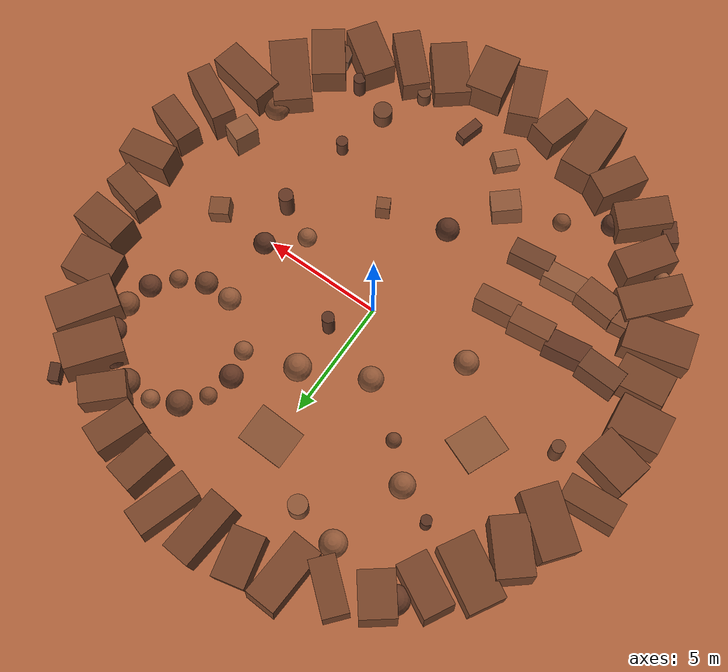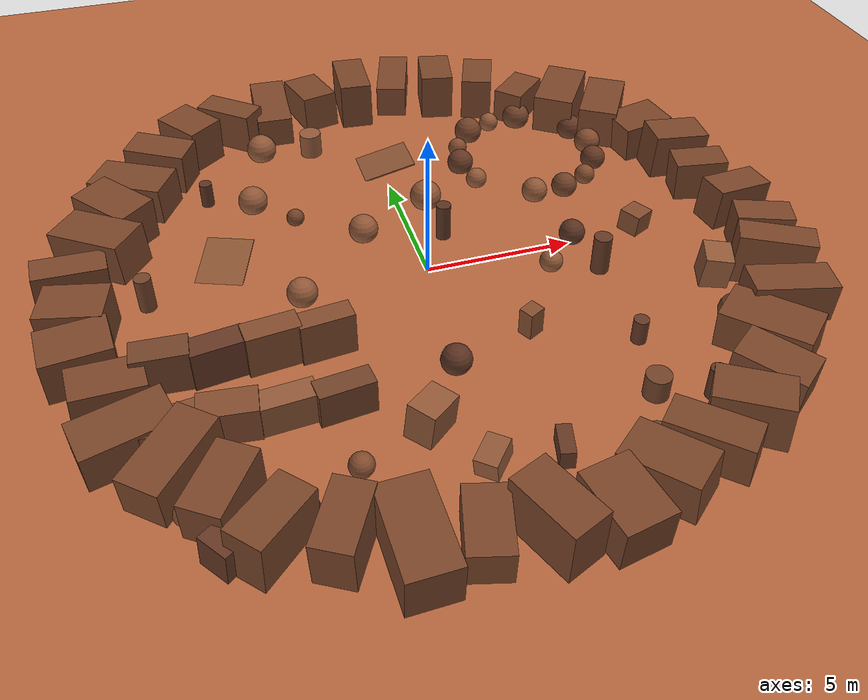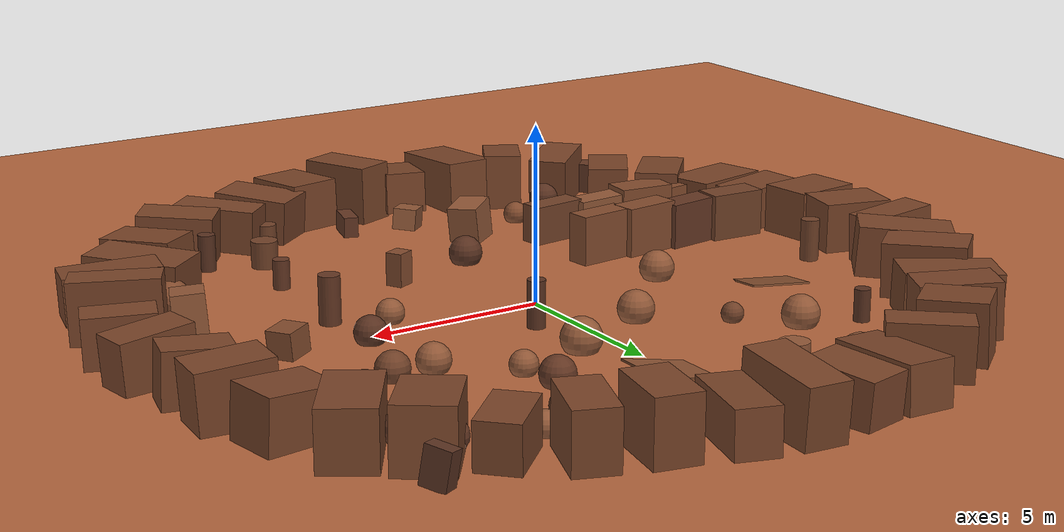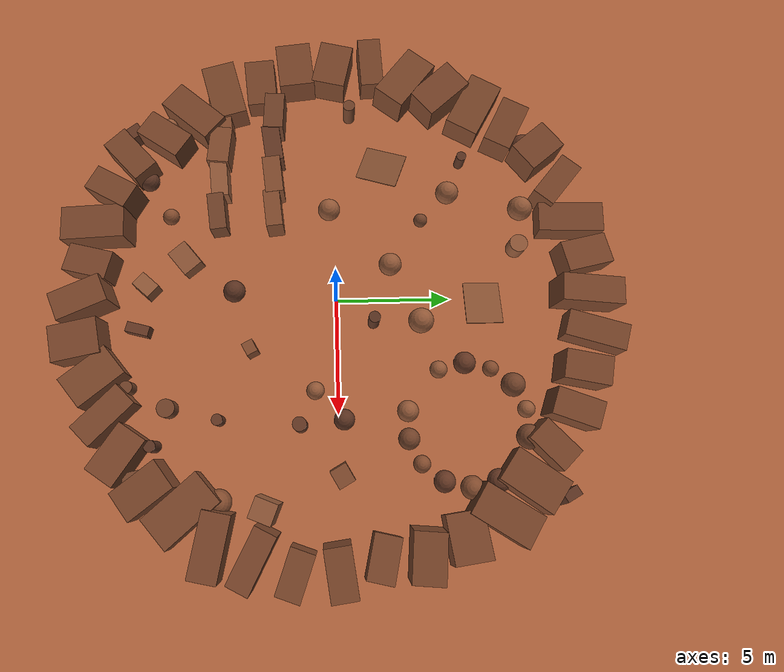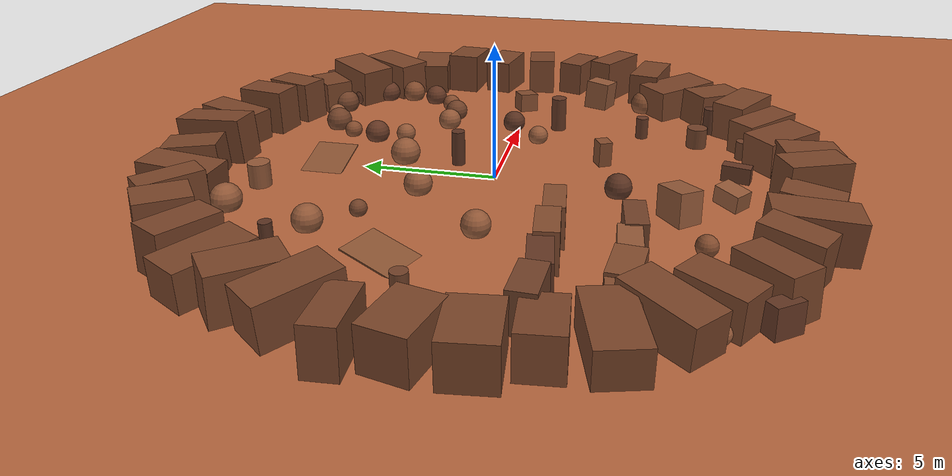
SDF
<?xml version="1.0"?>
<!-- Generated by gen_mars_world.py (seed 42) - edit the generator, not this file -->
<sdf version="1.8">
  <world name="rover_world">
    <physics name="1ms" type="ignored">
      <max_step_size>0.001</max_step_size>
      <real_time_factor>1.0</real_time_factor>
    </physics>
    <plugin filename="gz-sim-physics-system" name="gz::sim::systems::Physics"/>
    <plugin filename="gz-sim-user-commands-system" name="gz::sim::systems::UserCommands"/>
    <plugin filename="gz-sim-scene-broadcaster-system" name="gz::sim::systems::SceneBroadcaster"/>
    <plugin filename="gz-sim-sensors-system" name="gz::sim::systems::Sensors">
      <render_engine>ogre2</render_engine>
    </plugin>

    <scene>
      <ambient>0.5 0.38 0.3 1</ambient>
      <background>0.85 0.6 0.42 1</background>
    </scene>

    <light type="directional" name="sun">
      <cast_shadows>true</cast_shadows>
      <pose>0 0 10 0 0 0</pose>
      <diffuse>1.0 0.82 0.65 1</diffuse>
      <specular>0.3 0.25 0.2 1</specular>
      <direction>-0.4 0.2 -0.85</direction>
    </light>

    <model name="ground_plane">
      <static>true</static>
      <link name="link">
        <collision name="collision">
          <geometry><plane><normal>0 0 1</normal><size>60 60</size></plane></geometry>
        </collision>
        <visual name="visual">
          <geometry><plane><normal>0 0 1</normal><size>60 60</size></plane></geometry>
          <material><ambient>0.71 0.40 0.24 1</ambient><diffuse>0.71 0.40 0.24 1</diffuse></material>
        </visual>
      </link>
    </model>

    <model name="rim_0">
      <static>true</static>
      <pose>11.18 0.00 0.51 0.000 0.063 0.141</pose>
      <link name="link">
        <collision name="collision"><geometry><box><size>2.08 1.13 1.79</size></box></geometry></collision>
        <visual name="visual">
          <geometry><box><size>2.08 1.13 1.79</size></box></geometry>
          <material><ambient>0.48 0.27 0.16 1</ambient><diffuse>0.48 0.27 0.16 1</diffuse></material>
        </visual>
      </link>
    </model>
    <model name="rim_1">
      <static>true</static>
      <pose>10.72 1.70 0.63 0.000 -0.048 -0.222</pose>
      <link name="link">
        <collision name="collision"><geometry><box><size>1.83 1.13 1.60</size></box></geometry></collision>
        <visual name="visual">
          <geometry><box><size>1.83 1.13 1.60</size></box></geometry>
          <material><ambient>0.48 0.27 0.16 1</ambient><diffuse>0.48 0.27 0.16 1</diffuse></material>
        </visual>
      </link>
    </model>
    <model name="rim_2">
      <static>true</static>
      <pose>10.64 3.46 0.66 0.000 0.049 -0.081</pose>
      <link name="link">
        <collision name="collision"><geometry><box><size>2.02 1.35 1.85</size></box></geometry></collision>
        <visual name="visual">
          <geometry><box><size>2.02 1.35 1.85</size></box></geometry>
          <material><ambient>0.48 0.27 0.16 1</ambient><diffuse>0.48 0.27 0.16 1</diffuse></material>
        </visual>
      </link>
    </model>
    <model name="rim_3">
      <static>true</static>
      <pose>10.00 5.09 0.60 0.000 -0.065 0.145</pose>
      <link name="link">
        <collision name="collision"><geometry><box><size>1.96 1.57 1.47</size></box></geometry></collision>
        <visual name="visual">
          <geometry><box><size>1.96 1.57 1.47</size></box></geometry>
          <material><ambient>0.48 0.27 0.16 1</ambient><diffuse>0.48 0.27 0.16 1</diffuse></material>
        </visual>
      </link>
    </model>
    <model name="rim_4">
      <static>true</static>
      <pose>9.15 6.65 0.68 0.000 -0.019 1.007</pose>
      <link name="link">
        <collision name="collision"><geometry><box><size>2.61 1.44 1.63</size></box></geometry></collision>
        <visual name="visual">
          <geometry><box><size>2.61 1.44 1.63</size></box></geometry>
          <material><ambient>0.48 0.27 0.16 1</ambient><diffuse>0.48 0.27 0.16 1</diffuse></material>
        </visual>
      </link>
    </model>
    <model name="rim_5">
      <static>true</static>
      <pose>7.87 7.87 0.75 0.000 -0.073 0.949</pose>
      <link name="link">
        <collision name="collision"><geometry><box><size>2.42 1.52 1.66</size></box></geometry></collision>
        <visual name="visual">
          <geometry><box><size>2.42 1.52 1.66</size></box></geometry>
          <material><ambient>0.48 0.27 0.16 1</ambient><diffuse>0.48 0.27 0.16 1</diffuse></material>
        </visual>
      </link>
    </model>
    <model name="rim_6">
      <static>true</static>
      <pose>6.43 8.85 0.59 0.000 0.022 0.765</pose>
      <link name="link">
        <collision name="collision"><geometry><box><size>1.88 1.14 1.28</size></box></geometry></collision>
        <visual name="visual">
          <geometry><box><size>1.88 1.14 1.28</size></box></geometry>
          <material><ambient>0.48 0.27 0.16 1</ambient><diffuse>0.48 0.27 0.16 1</diffuse></material>
        </visual>
      </link>
    </model>
    <model name="rim_7">
      <static>true</static>
      <pose>5.00 9.82 0.61 0.000 0.017 1.218</pose>
      <link name="link">
        <collision name="collision"><geometry><box><size>2.01 1.16 1.95</size></box></geometry></collision>
        <visual name="visual">
          <geometry><box><size>2.01 1.16 1.95</size></box></geometry>
          <material><ambient>0.48 0.27 0.16 1</ambient><diffuse>0.48 0.27 0.16 1</diffuse></material>
        </visual>
      </link>
    </model>
    <model name="rim_8">
      <static>true</static>
      <pose>3.37 10.37 0.72 0.000 0.009 1.369</pose>
      <link name="link">
        <collision name="collision"><geometry><box><size>1.96 1.23 1.99</size></box></geometry></collision>
        <visual name="visual">
          <geometry><box><size>1.96 1.23 1.99</size></box></geometry>
          <material><ambient>0.48 0.27 0.16 1</ambient><diffuse>0.48 0.27 0.16 1</diffuse></material>
        </visual>
      </link>
    </model>
    <model name="rim_9">
      <static>true</static>
      <pose>1.75 11.07 0.75 0.000 -0.037 1.266</pose>
      <link name="link">
        <collision name="collision"><geometry><box><size>2.58 1.14 1.23</size></box></geometry></collision>
        <visual name="visual">
          <geometry><box><size>2.58 1.14 1.23</size></box></geometry>
          <material><ambient>0.48 0.27 0.16 1</ambient><diffuse>0.48 0.27 0.16 1</diffuse></material>
        </visual>
      </link>
    </model>
    <model name="rim_10">
      <static>true</static>
      <pose>0.00 10.93 0.78 0.000 0.066 1.487</pose>
      <link name="link">
        <collision name="collision"><geometry><box><size>2.68 1.19 1.72</size></box></geometry></collision>
        <visual name="visual">
          <geometry><box><size>2.68 1.19 1.72</size></box></geometry>
          <material><ambient>0.48 0.27 0.16 1</ambient><diffuse>0.48 0.27 0.16 1</diffuse></material>
        </visual>
      </link>
    </model>
    <model name="rim_11">
      <static>true</static>
      <pose>-1.73 10.94 0.58 0.000 0.064 1.796</pose>
      <link name="link">
        <collision name="collision"><geometry><box><size>2.05 1.34 1.41</size></box></geometry></collision>
        <visual name="visual">
          <geometry><box><size>2.05 1.34 1.41</size></box></geometry>
          <material><ambient>0.48 0.27 0.16 1</ambient><diffuse>0.48 0.27 0.16 1</diffuse></material>
        </visual>
      </link>
    </model>
    <model name="rim_12">
      <static>true</static>
      <pose>-3.41 10.50 0.57 0.000 -0.062 1.523</pose>
      <link name="link">
        <collision name="collision"><geometry><box><size>2.80 1.31 1.27</size></box></geometry></collision>
        <visual name="visual">
          <geometry><box><size>2.80 1.31 1.27</size></box></geometry>
          <material><ambient>0.48 0.27 0.16 1</ambient><diffuse>0.48 0.27 0.16 1</diffuse></material>
        </visual>
      </link>
    </model>
    <model name="rim_13">
      <static>true</static>
      <pose>-5.07 9.96 0.74 0.000 0.005 2.439</pose>
      <link name="link">
        <collision name="collision"><geometry><box><size>2.22 1.04 1.51</size></box></geometry></collision>
        <visual name="visual">
          <geometry><box><size>2.22 1.04 1.51</size></box></geometry>
          <material><ambient>0.48 0.27 0.16 1</ambient><diffuse>0.48 0.27 0.16 1</diffuse></material>
        </visual>
      </link>
    </model>
    <model name="rim_14">
      <static>true</static>
      <pose>-6.69 9.21 0.76 0.000 -0.037 2.229</pose>
      <link name="link">
        <collision name="collision"><geometry><box><size>1.81 1.43 1.75</size></box></geometry></collision>
        <visual name="visual">
          <geometry><box><size>1.81 1.43 1.75</size></box></geometry>
          <material><ambient>0.48 0.27 0.16 1</ambient><diffuse>0.48 0.27 0.16 1</diffuse></material>
        </visual>
      </link>
    </model>
    <model name="rim_15">
      <static>true</static>
      <pose>-7.91 7.91 0.53 0.000 -0.038 2.657</pose>
      <link name="link">
        <collision name="collision"><geometry><box><size>2.23 1.27 1.96</size></box></geometry></collision>
        <visual name="visual">
          <geometry><box><size>2.23 1.27 1.96</size></box></geometry>
          <material><ambient>0.48 0.27 0.16 1</ambient><diffuse>0.48 0.27 0.16 1</diffuse></material>
        </visual>
      </link>
    </model>
    <model name="rim_16">
      <static>true</static>
      <pose>-8.98 6.52 0.55 0.000 0.017 2.624</pose>
      <link name="link">
        <collision name="collision"><geometry><box><size>2.71 1.52 1.44</size></box></geometry></collision>
        <visual name="visual">
          <geometry><box><size>2.71 1.52 1.44</size></box></geometry>
          <material><ambient>0.48 0.27 0.16 1</ambient><diffuse>0.48 0.27 0.16 1</diffuse></material>
        </visual>
      </link>
    </model>
    <model name="rim_17">
      <static>true</static>
      <pose>-9.70 4.94 0.73 0.000 -0.028 2.271</pose>
      <link name="link">
        <collision name="collision"><geometry><box><size>2.34 1.47 1.62</size></box></geometry></collision>
        <visual name="visual">
          <geometry><box><size>2.34 1.47 1.62</size></box></geometry>
          <material><ambient>0.48 0.27 0.16 1</ambient><diffuse>0.48 0.27 0.16 1</diffuse></material>
        </visual>
      </link>
    </model>
    <model name="rim_18">
      <static>true</static>
      <pose>-10.28 3.34 0.78 0.000 0.060 2.474</pose>
      <link name="link">
        <collision name="collision"><geometry><box><size>2.68 1.50 1.45</size></box></geometry></collision>
        <visual name="visual">
          <geometry><box><size>2.68 1.50 1.45</size></box></geometry>
          <material><ambient>0.48 0.27 0.16 1</ambient><diffuse>0.48 0.27 0.16 1</diffuse></material>
        </visual>
      </link>
    </model>
    <model name="rim_19">
      <static>true</static>
      <pose>-11.23 1.78 0.53 0.000 -0.059 3.197</pose>
      <link name="link">
        <collision name="collision"><geometry><box><size>2.29 1.04 1.81</size></box></geometry></collision>
        <visual name="visual">
          <geometry><box><size>2.29 1.04 1.81</size></box></geometry>
          <material><ambient>0.48 0.27 0.16 1</ambient><diffuse>0.48 0.27 0.16 1</diffuse></material>
        </visual>
      </link>
    </model>
    <model name="rim_20">
      <static>true</static>
      <pose>-11.09 0.00 0.66 0.000 0.006 2.911</pose>
      <link name="link">
        <collision name="collision"><geometry><box><size>2.07 1.52 1.54</size></box></geometry></collision>
        <visual name="visual">
          <geometry><box><size>2.07 1.52 1.54</size></box></geometry>
          <material><ambient>0.48 0.27 0.16 1</ambient><diffuse>0.48 0.27 0.16 1</diffuse></material>
        </visual>
      </link>
    </model>
    <model name="rim_21">
      <static>true</static>
      <pose>-11.10 -1.76 0.56 0.000 0.003 3.249</pose>
      <link name="link">
        <collision name="collision"><geometry><box><size>2.11 1.60 1.72</size></box></geometry></collision>
        <visual name="visual">
          <geometry><box><size>2.11 1.60 1.72</size></box></geometry>
          <material><ambient>0.48 0.27 0.16 1</ambient><diffuse>0.48 0.27 0.16 1</diffuse></material>
        </visual>
      </link>
    </model>
    <model name="rim_22">
      <static>true</static>
      <pose>-10.34 -3.36 0.57 0.000 -0.069 3.232</pose>
      <link name="link">
        <collision name="collision"><geometry><box><size>2.14 1.35 1.38</size></box></geometry></collision>
        <visual name="visual">
          <geometry><box><size>2.14 1.35 1.38</size></box></geometry>
          <material><ambient>0.48 0.27 0.16 1</ambient><diffuse>0.48 0.27 0.16 1</diffuse></material>
        </visual>
      </link>
    </model>
    <model name="rim_23">
      <static>true</static>
      <pose>-9.96 -5.08 0.57 0.000 0.027 3.403</pose>
      <link name="link">
        <collision name="collision"><geometry><box><size>2.71 1.52 1.26</size></box></geometry></collision>
        <visual name="visual">
          <geometry><box><size>2.71 1.52 1.26</size></box></geometry>
          <material><ambient>0.48 0.27 0.16 1</ambient><diffuse>0.48 0.27 0.16 1</diffuse></material>
        </visual>
      </link>
    </model>
    <model name="rim_24">
      <static>true</static>
      <pose>-8.84 -6.42 0.54 0.000 0.049 3.998</pose>
      <link name="link">
        <collision name="collision"><geometry><box><size>2.74 1.34 1.58</size></box></geometry></collision>
        <visual name="visual">
          <geometry><box><size>2.74 1.34 1.58</size></box></geometry>
          <material><ambient>0.48 0.27 0.16 1</ambient><diffuse>0.48 0.27 0.16 1</diffuse></material>
        </visual>
      </link>
    </model>
    <model name="rim_25">
      <static>true</static>
      <pose>-7.72 -7.72 0.53 0.000 0.028 4.110</pose>
      <link name="link">
        <collision name="collision"><geometry><box><size>2.23 1.25 1.57</size></box></geometry></collision>
        <visual name="visual">
          <geometry><box><size>2.23 1.25 1.57</size></box></geometry>
          <material><ambient>0.48 0.27 0.16 1</ambient><diffuse>0.48 0.27 0.16 1</diffuse></material>
        </visual>
      </link>
    </model>
    <model name="rim_26">
      <static>true</static>
      <pose>-6.70 -9.22 0.53 0.000 -0.050 3.883</pose>
      <link name="link">
        <collision name="collision"><geometry><box><size>2.20 1.20 1.89</size></box></geometry></collision>
        <visual name="visual">
          <geometry><box><size>2.20 1.20 1.89</size></box></geometry>
          <material><ambient>0.48 0.27 0.16 1</ambient><diffuse>0.48 0.27 0.16 1</diffuse></material>
        </visual>
      </link>
    </model>
    <model name="rim_27">
      <static>true</static>
      <pose>-5.03 -9.86 0.63 0.000 0.058 4.196</pose>
      <link name="link">
        <collision name="collision"><geometry><box><size>2.08 1.15 1.94</size></box></geometry></collision>
        <visual name="visual">
          <geometry><box><size>2.08 1.15 1.94</size></box></geometry>
          <material><ambient>0.48 0.27 0.16 1</ambient><diffuse>0.48 0.27 0.16 1</diffuse></material>
        </visual>
      </link>
    </model>
    <model name="rim_28">
      <static>true</static>
      <pose>-3.44 -10.59 0.52 0.000 0.056 4.739</pose>
      <link name="link">
        <collision name="collision"><geometry><box><size>2.80 1.50 1.98</size></box></geometry></collision>
        <visual name="visual">
          <geometry><box><size>2.80 1.50 1.98</size></box></geometry>
          <material><ambient>0.48 0.27 0.16 1</ambient><diffuse>0.48 0.27 0.16 1</diffuse></material>
        </visual>
      </link>
    </model>
    <model name="rim_29">
      <static>true</static>
      <pose>-1.71 -10.77 0.65 0.000 0.078 4.458</pose>
      <link name="link">
        <collision name="collision"><geometry><box><size>2.01 1.24 1.25</size></box></geometry></collision>
        <visual name="visual">
          <geometry><box><size>2.01 1.24 1.25</size></box></geometry>
          <material><ambient>0.48 0.27 0.16 1</ambient><diffuse>0.48 0.27 0.16 1</diffuse></material>
        </visual>
      </link>
    </model>
    <model name="rim_30">
      <static>true</static>
      <pose>-0.00 -10.96 0.74 0.000 0.009 5.109</pose>
      <link name="link">
        <collision name="collision"><geometry><box><size>2.26 1.25 1.97</size></box></geometry></collision>
        <visual name="visual">
          <geometry><box><size>2.26 1.25 1.97</size></box></geometry>
          <material><ambient>0.48 0.27 0.16 1</ambient><diffuse>0.48 0.27 0.16 1</diffuse></material>
        </visual>
      </link>
    </model>
    <model name="rim_31">
      <static>true</static>
      <pose>1.76 -11.09 0.55 0.000 0.040 4.903</pose>
      <link name="link">
        <collision name="collision"><geometry><box><size>2.10 1.58 1.66</size></box></geometry></collision>
        <visual name="visual">
          <geometry><box><size>2.10 1.58 1.66</size></box></geometry>
          <material><ambient>0.48 0.27 0.16 1</ambient><diffuse>0.48 0.27 0.16 1</diffuse></material>
        </visual>
      </link>
    </model>
    <model name="rim_32">
      <static>true</static>
      <pose>3.35 -10.30 0.68 0.000 -0.067 5.395</pose>
      <link name="link">
        <collision name="collision"><geometry><box><size>2.30 1.51 1.33</size></box></geometry></collision>
        <visual name="visual">
          <geometry><box><size>2.30 1.51 1.33</size></box></geometry>
          <material><ambient>0.48 0.27 0.16 1</ambient><diffuse>0.48 0.27 0.16 1</diffuse></material>
        </visual>
      </link>
    </model>
    <model name="rim_33">
      <static>true</static>
      <pose>4.95 -9.72 0.68 0.000 -0.041 5.496</pose>
      <link name="link">
        <collision name="collision"><geometry><box><size>2.48 1.14 1.30</size></box></geometry></collision>
        <visual name="visual">
          <geometry><box><size>2.48 1.14 1.30</size></box></geometry>
          <material><ambient>0.48 0.27 0.16 1</ambient><diffuse>0.48 0.27 0.16 1</diffuse></material>
        </visual>
      </link>
    </model>
    <model name="rim_34">
      <static>true</static>
      <pose>6.56 -9.03 0.69 0.000 -0.047 5.688</pose>
      <link name="link">
        <collision name="collision"><geometry><box><size>2.22 1.35 1.62</size></box></geometry></collision>
        <visual name="visual">
          <geometry><box><size>2.22 1.35 1.62</size></box></geometry>
          <material><ambient>0.48 0.27 0.16 1</ambient><diffuse>0.48 0.27 0.16 1</diffuse></material>
        </visual>
      </link>
    </model>
    <model name="rim_35">
      <static>true</static>
      <pose>7.94 -7.94 0.57 0.000 0.040 5.351</pose>
      <link name="link">
        <collision name="collision"><geometry><box><size>2.20 1.40 1.44</size></box></geometry></collision>
        <visual name="visual">
          <geometry><box><size>2.20 1.40 1.44</size></box></geometry>
          <material><ambient>0.48 0.27 0.16 1</ambient><diffuse>0.48 0.27 0.16 1</diffuse></material>
        </visual>
      </link>
    </model>
    <model name="rim_36">
      <static>true</static>
      <pose>8.77 -6.37 0.64 0.000 -0.038 5.425</pose>
      <link name="link">
        <collision name="collision"><geometry><box><size>2.80 1.60 1.26</size></box></geometry></collision>
        <visual name="visual">
          <geometry><box><size>2.80 1.60 1.26</size></box></geometry>
          <material><ambient>0.48 0.27 0.16 1</ambient><diffuse>0.48 0.27 0.16 1</diffuse></material>
        </visual>
      </link>
    </model>
    <model name="rim_37">
      <static>true</static>
      <pose>10.12 -5.16 0.76 0.000 0.033 6.079</pose>
      <link name="link">
        <collision name="collision"><geometry><box><size>2.68 1.22 1.33</size></box></geometry></collision>
        <visual name="visual">
          <geometry><box><size>2.68 1.22 1.33</size></box></geometry>
          <material><ambient>0.48 0.27 0.16 1</ambient><diffuse>0.48 0.27 0.16 1</diffuse></material>
        </visual>
      </link>
    </model>
    <model name="rim_38">
      <static>true</static>
      <pose>10.62 -3.45 0.80 0.000 0.026 5.809</pose>
      <link name="link">
        <collision name="collision"><geometry><box><size>2.45 1.00 1.85</size></box></geometry></collision>
        <visual name="visual">
          <geometry><box><size>2.45 1.00 1.85</size></box></geometry>
          <material><ambient>0.48 0.27 0.16 1</ambient><diffuse>0.48 0.27 0.16 1</diffuse></material>
        </visual>
      </link>
    </model>
    <model name="rim_39">
      <static>true</static>
      <pose>11.22 -1.78 0.54 0.000 0.017 5.944</pose>
      <link name="link">
        <collision name="collision"><geometry><box><size>1.92 1.06 1.64</size></box></geometry></collision>
        <visual name="visual">
          <geometry><box><size>1.92 1.06 1.64</size></box></geometry>
          <material><ambient>0.48 0.27 0.16 1</ambient><diffuse>0.48 0.27 0.16 1</diffuse></material>
        </visual>
      </link>
    </model>
    <model name="crater_0">
      <static>true</static>
      <pose>8.10 5.50 0.27 0 0 0</pose>
      <link name="link">
        <collision name="collision"><geometry><sphere><radius>0.49</radius></sphere></geometry></collision>
        <visual name="visual">
          <geometry><sphere><radius>0.49</radius></sphere></geometry>
          <material><ambient>0.52 0.30 0.18 1</ambient><diffuse>0.52 0.30 0.18 1</diffuse></material>
        </visual>
      </link>
    </model>
    <model name="crater_1">
      <static>true</static>
      <pose>7.84 6.63 0.27 0 0 0</pose>
      <link name="link">
        <collision name="collision"><geometry><sphere><radius>0.49</radius></sphere></geometry></collision>
        <visual name="visual">
          <geometry><sphere><radius>0.49</radius></sphere></geometry>
          <material><ambient>0.40 0.22 0.14 1</ambient><diffuse>0.40 0.22 0.14 1</diffuse></material>
        </visual>
      </link>
    </model>
    <model name="crater_2">
      <static>true</static>
      <pose>7.12 7.53 0.25 0 0 0</pose>
      <link name="link">
        <collision name="collision"><geometry><sphere><radius>0.45</radius></sphere></geometry></collision>
        <visual name="visual">
          <geometry><sphere><radius>0.45</radius></sphere></geometry>
          <material><ambient>0.40 0.22 0.14 1</ambient><diffuse>0.40 0.22 0.14 1</diffuse></material>
        </visual>
      </link>
    </model>
    <model name="crater_3">
      <static>true</static>
      <pose>6.08 8.03 0.29 0 0 0</pose>
      <link name="link">
        <collision name="collision"><geometry><sphere><radius>0.53</radius></sphere></geometry></collision>
        <visual name="visual">
          <geometry><sphere><radius>0.53</radius></sphere></geometry>
          <material><ambient>0.45 0.26 0.16 1</ambient><diffuse>0.45 0.26 0.16 1</diffuse></material>
        </visual>
      </link>
    </model>
    <model name="crater_4">
      <static>true</static>
      <pose>4.92 8.03 0.20 0 0 0</pose>
      <link name="link">
        <collision name="collision"><geometry><sphere><radius>0.37</radius></sphere></geometry></collision>
        <visual name="visual">
          <geometry><sphere><radius>0.37</radius></sphere></geometry>
          <material><ambient>0.58 0.35 0.22 1</ambient><diffuse>0.58 0.35 0.22 1</diffuse></material>
        </visual>
      </link>
    </model>
    <model name="crater_5">
      <static>true</static>
      <pose>3.88 7.53 0.28 0 0 0</pose>
      <link name="link">
        <collision name="collision"><geometry><sphere><radius>0.52</radius></sphere></geometry></collision>
        <visual name="visual">
          <geometry><sphere><radius>0.52</radius></sphere></geometry>
          <material><ambient>0.45 0.26 0.16 1</ambient><diffuse>0.45 0.26 0.16 1</diffuse></material>
        </visual>
      </link>
    </model>
    <model name="crater_6">
      <static>true</static>
      <pose>3.16 6.63 0.19 0 0 0</pose>
      <link name="link">
        <collision name="collision"><geometry><sphere><radius>0.35</radius></sphere></geometry></collision>
        <visual name="visual">
          <geometry><sphere><radius>0.35</radius></sphere></geometry>
          <material><ambient>0.52 0.30 0.18 1</ambient><diffuse>0.52 0.30 0.18 1</diffuse></material>
        </visual>
      </link>
    </model>
    <model name="crater_7">
      <static>true</static>
      <pose>2.90 5.50 0.26 0 0 0</pose>
      <link name="link">
        <collision name="collision"><geometry><sphere><radius>0.48</radius></sphere></geometry></collision>
        <visual name="visual">
          <geometry><sphere><radius>0.48</radius></sphere></geometry>
          <material><ambient>0.40 0.22 0.14 1</ambient><diffuse>0.40 0.22 0.14 1</diffuse></material>
        </visual>
      </link>
    </model>
    <model name="crater_8">
      <static>true</static>
      <pose>3.16 4.37 0.21 0 0 0</pose>
      <link name="link">
        <collision name="collision"><geometry><sphere><radius>0.38</radius></sphere></geometry></collision>
        <visual name="visual">
          <geometry><sphere><radius>0.38</radius></sphere></geometry>
          <material><ambient>0.58 0.35 0.22 1</ambient><diffuse>0.58 0.35 0.22 1</diffuse></material>
        </visual>
      </link>
    </model>
    <model name="crater_10">
      <static>true</static>
      <pose>4.92 2.97 0.25 0 0 0</pose>
      <link name="link">
        <collision name="collision"><geometry><sphere><radius>0.46</radius></sphere></geometry></collision>
        <visual name="visual">
          <geometry><sphere><radius>0.46</radius></sphere></geometry>
          <material><ambient>0.58 0.35 0.22 1</ambient><diffuse>0.58 0.35 0.22 1</diffuse></material>
        </visual>
      </link>
    </model>
    <model name="crater_11">
      <static>true</static>
      <pose>6.08 2.97 0.25 0 0 0</pose>
      <link name="link">
        <collision name="collision"><geometry><sphere><radius>0.46</radius></sphere></geometry></collision>
        <visual name="visual">
          <geometry><sphere><radius>0.46</radius></sphere></geometry>
          <material><ambient>0.45 0.26 0.16 1</ambient><diffuse>0.45 0.26 0.16 1</diffuse></material>
        </visual>
      </link>
    </model>
    <model name="crater_12">
      <static>true</static>
      <pose>7.12 3.47 0.20 0 0 0</pose>
      <link name="link">
        <collision name="collision"><geometry><sphere><radius>0.37</radius></sphere></geometry></collision>
        <visual name="visual">
          <geometry><sphere><radius>0.37</radius></sphere></geometry>
          <material><ambient>0.52 0.30 0.18 1</ambient><diffuse>0.52 0.30 0.18 1</diffuse></material>
        </visual>
      </link>
    </model>
    <model name="crater_13">
      <static>true</static>
      <pose>7.84 4.37 0.25 0 0 0</pose>
      <link name="link">
        <collision name="collision"><geometry><sphere><radius>0.46</radius></sphere></geometry></collision>
        <visual name="visual">
          <geometry><sphere><radius>0.46</radius></sphere></geometry>
          <material><ambient>0.40 0.22 0.14 1</ambient><diffuse>0.40 0.22 0.14 1</diffuse></material>
        </visual>
      </link>
    </model>
    <model name="canyon_0_0">
      <static>true</static>
      <pose>-4.00 -5.28 0.53 0.000 0.000 0.120</pose>
      <link name="link">
        <collision name="collision"><geometry><box><size>1.70 0.74 1.18</size></box></geometry></collision>
        <visual name="visual">
          <geometry><box><size>1.70 0.74 1.18</size></box></geometry>
          <material><ambient>0.45 0.26 0.16 1</ambient><diffuse>0.45 0.26 0.16 1</diffuse></material>
        </visual>
      </link>
    </model>
    <model name="canyon_0_1">
      <static>true</static>
      <pose>-5.60 -5.22 0.54 0.000 0.000 0.084</pose>
      <link name="link">
        <collision name="collision"><geometry><box><size>1.70 0.77 1.06</size></box></geometry></collision>
        <visual name="visual">
          <geometry><box><size>1.70 0.77 1.06</size></box></geometry>
          <material><ambient>0.58 0.35 0.22 1</ambient><diffuse>0.58 0.35 0.22 1</diffuse></material>
        </visual>
      </link>
    </model>
    <model name="canyon_0_2">
      <static>true</static>
      <pose>-7.20 -5.21 0.65 0.000 0.000 -0.101</pose>
      <link name="link">
        <collision name="collision"><geometry><box><size>1.70 0.98 1.14</size></box></geometry></collision>
        <visual name="visual">
          <geometry><box><size>1.70 0.98 1.14</size></box></geometry>
          <material><ambient>0.52 0.30 0.18 1</ambient><diffuse>0.52 0.30 0.18 1</diffuse></material>
        </visual>
      </link>
    </model>
    <model name="canyon_0_3">
      <static>true</static>
      <pose>-8.80 -5.22 0.50 0.000 0.000 0.129</pose>
      <link name="link">
        <collision name="collision"><geometry><box><size>1.70 0.92 1.20</size></box></geometry></collision>
        <visual name="visual">
          <geometry><box><size>1.70 0.92 1.20</size></box></geometry>
          <material><ambient>0.52 0.30 0.18 1</ambient><diffuse>0.52 0.30 0.18 1</diffuse></material>
        </visual>
      </link>
    </model>
    <model name="canyon_1_0">
      <static>true</static>
      <pose>-4.00 -2.75 0.66 0.000 0.000 0.108</pose>
      <link name="link">
        <collision name="collision"><geometry><box><size>1.70 0.73 1.52</size></box></geometry></collision>
        <visual name="visual">
          <geometry><box><size>1.70 0.73 1.52</size></box></geometry>
          <material><ambient>0.52 0.30 0.18 1</ambient><diffuse>0.52 0.30 0.18 1</diffuse></material>
        </visual>
      </link>
    </model>
    <model name="canyon_1_1">
      <static>true</static>
      <pose>-5.60 -2.76 0.68 0.000 0.000 0.111</pose>
      <link name="link">
        <collision name="collision"><geometry><box><size>1.70 0.80 1.49</size></box></geometry></collision>
        <visual name="visual">
          <geometry><box><size>1.70 0.80 1.49</size></box></geometry>
          <material><ambient>0.52 0.30 0.18 1</ambient><diffuse>0.52 0.30 0.18 1</diffuse></material>
        </visual>
      </link>
    </model>
    <model name="canyon_1_2">
      <static>true</static>
      <pose>-7.20 -2.80 0.54 0.000 0.000 0.140</pose>
      <link name="link">
        <collision name="collision"><geometry><box><size>1.70 0.80 1.52</size></box></geometry></collision>
        <visual name="visual">
          <geometry><box><size>1.70 0.80 1.52</size></box></geometry>
          <material><ambient>0.40 0.22 0.14 1</ambient><diffuse>0.40 0.22 0.14 1</diffuse></material>
        </visual>
      </link>
    </model>
    <model name="canyon_1_3">
      <static>true</static>
      <pose>-8.80 -2.73 0.60 0.000 0.000 -0.051</pose>
      <link name="link">
        <collision name="collision"><geometry><box><size>1.70 0.90 1.51</size></box></geometry></collision>
        <visual name="visual">
          <geometry><box><size>1.70 0.90 1.51</size></box></geometry>
          <material><ambient>0.45 0.26 0.16 1</ambient><diffuse>0.45 0.26 0.16 1</diffuse></material>
        </visual>
      </link>
    </model>
    <model name="ramp_0">
      <static>true</static>
      <pose>0.00 6.50 0.10 0.000 -0.210 0.000</pose>
      <link name="link">
        <collision name="collision"><geometry><box><size>2.40 1.60 0.05</size></box></geometry></collision>
        <visual name="visual">
          <geometry><box><size>2.40 1.60 0.05</size></box></geometry>
          <material><ambient>0.55 0.33 0.20 1</ambient><diffuse>0.55 0.33 0.20 1</diffuse></material>
        </visual>
      </link>
    </model>
    <model name="ramp_1">
      <static>true</static>
      <pose>-6.50 2.00 0.10 0.000 -0.210 1.200</pose>
      <link name="link">
        <collision name="collision"><geometry><box><size>2.40 1.60 0.05</size></box></geometry></collision>
        <visual name="visual">
          <geometry><box><size>2.40 1.60 0.05</size></box></geometry>
          <material><ambient>0.55 0.33 0.20 1</ambient><diffuse>0.55 0.33 0.20 1</diffuse></material>
        </visual>
      </link>
    </model>
    <model name="rock_s0">
      <static>true</static>
      <pose>-7.23 8.84 0.32 0 0 0</pose>
      <link name="link">
        <collision name="collision"><geometry><sphere><radius>0.59</radius></sphere></geometry></collision>
        <visual name="visual">
          <geometry><sphere><radius>0.59</radius></sphere></geometry>
          <material><ambient>0.40 0.22 0.14 1</ambient><diffuse>0.40 0.22 0.14 1</diffuse></material>
        </visual>
      </link>
    </model>
    <model name="rock_s1">
      <static>true</static>
      <pose>-5.83 -8.57 0.25 0 0 0</pose>
      <link name="link">
        <collision name="collision"><geometry><sphere><radius>0.46</radius></sphere></geometry></collision>
        <visual name="visual">
          <geometry><sphere><radius>0.46</radius></sphere></geometry>
          <material><ambient>0.36 0.20 0.13 1</ambient><diffuse>0.36 0.20 0.13 1</diffuse></material>
        </visual>
      </link>
    </model>
    <model name="rock_b2">
      <static>true</static>
      <pose>7.52 0.13 0.41 0.074 -0.036 2.088</pose>
      <link name="link">
        <collision name="collision"><geometry><box><size>0.76 0.82 0.75</size></box></geometry></collision>
        <visual name="visual">
          <geometry><box><size>0.76 0.82 0.75</size></box></geometry>
          <material><ambient>0.52 0.30 0.18 1</ambient><diffuse>0.52 0.30 0.18 1</diffuse></material>
        </visual>
      </link>
    </model>
    <model name="rock_b3">
      <static>true</static>
      <pose>2.17 -3.74 0.39 -0.017 -0.011 2.056</pose>
      <link name="link">
        <collision name="collision"><geometry><box><size>0.50 0.57 1.06</size></box></geometry></collision>
        <visual name="visual">
          <geometry><box><size>0.50 0.57 1.06</size></box></geometry>
          <material><ambient>0.52 0.30 0.18 1</ambient><diffuse>0.52 0.30 0.18 1</diffuse></material>
        </visual>
      </link>
    </model>
    <model name="rock_s4">
      <static>true</static>
      <pose>8.50 -4.98 0.30 0 0 0</pose>
      <link name="link">
        <collision name="collision"><geometry><sphere><radius>0.54</radius></sphere></geometry></collision>
        <visual name="visual">
          <geometry><sphere><radius>0.54</radius></sphere></geometry>
          <material><ambient>0.52 0.30 0.18 1</ambient><diffuse>0.52 0.30 0.18 1</diffuse></material>
        </visual>
      </link>
    </model>
    <model name="rock_s5">
      <static>true</static>
      <pose>-1.61 2.44 0.28 0 0 0</pose>
      <link name="link">
        <collision name="collision"><geometry><sphere><radius>0.51</radius></sphere></geometry></collision>
        <visual name="visual">
          <geometry><sphere><radius>0.51</radius></sphere></geometry>
          <material><ambient>0.58 0.35 0.22 1</ambient><diffuse>0.58 0.35 0.22 1</diffuse></material>
        </visual>
      </link>
    </model>
    <model name="rock_b6">
      <static>true</static>
      <pose>-1.89 -6.63 0.48 0.059 0.091 0.687</pose>
      <link name="link">
        <collision name="collision"><geometry><box><size>1.21 0.92 1.22</size></box></geometry></collision>
        <visual name="visual">
          <geometry><box><size>1.21 0.92 1.22</size></box></geometry>
          <material><ambient>0.58 0.35 0.22 1</ambient><diffuse>0.58 0.35 0.22 1</diffuse></material>
        </visual>
      </link>
    </model>
    <model name="rock_s7">
      <static>true</static>
      <pose>-0.48 -4.53 0.27 0 0 0</pose>
      <link name="link">
        <collision name="collision"><geometry><sphere><radius>0.49</radius></sphere></geometry></collision>
        <visual name="visual">
          <geometry><sphere><radius>0.49</radius></sphere></geometry>
          <material><ambient>0.36 0.20 0.13 1</ambient><diffuse>0.36 0.20 0.13 1</diffuse></material>
        </visual>
      </link>
    </model>
    <model name="rock_s8">
      <static>true</static>
      <pose>-4.27 -0.27 0.28 0 0 0</pose>
      <link name="link">
        <collision name="collision"><geometry><sphere><radius>0.50</radius></sphere></geometry></collision>
        <visual name="visual">
          <geometry><sphere><radius>0.50</radius></sphere></geometry>
          <material><ambient>0.58 0.35 0.22 1</ambient><diffuse>0.58 0.35 0.22 1</diffuse></material>
        </visual>
      </link>
    </model>
    <model name="rock_s9">
      <static>true</static>
      <pose>-4.17 8.48 0.30 0 0 0</pose>
      <link name="link">
        <collision name="collision"><geometry><sphere><radius>0.55</radius></sphere></geometry></collision>
        <visual name="visual">
          <geometry><sphere><radius>0.55</radius></sphere></geometry>
          <material><ambient>0.58 0.35 0.22 1</ambient><diffuse>0.58 0.35 0.22 1</diffuse></material>
        </visual>
      </link>
    </model>
    <model name="rock_c10">
      <static>true</static>
      <pose>-9.04 0.74 0.61 0 0 0</pose>
      <link name="link">
        <collision name="collision"><geometry><cylinder><radius>0.27</radius><length>1.22</length></cylinder></geometry></collision>
        <visual name="visual">
          <geometry><cylinder><radius>0.27</radius><length>1.22</length></cylinder></geometry>
          <material><ambient>0.45 0.26 0.16 1</ambient><diffuse>0.45 0.26 0.16 1</diffuse></material>
        </visual>
      </link>
    </model>
    <model name="rock_c11">
      <static>true</static>
      <pose>4.66 -7.25 0.39 0 0 0</pose>
      <link name="link">
        <collision name="collision"><geometry><cylinder><radius>0.39</radius><length>0.79</length></cylinder></geometry></collision>
        <visual name="visual">
          <geometry><cylinder><radius>0.39</radius><length>0.79</length></cylinder></geometry>
          <material><ambient>0.45 0.26 0.16 1</ambient><diffuse>0.45 0.26 0.16 1</diffuse></material>
        </visual>
      </link>
    </model>
    <model name="rock_b12">
      <static>true</static>
      <pose>1.24 -8.63 0.43 -0.020 -0.003 1.319</pose>
      <link name="link">
        <collision name="collision"><geometry><box><size>1.03 0.44 0.61</size></box></geometry></collision>
        <visual name="visual">
          <geometry><box><size>1.03 0.44 0.61</size></box></geometry>
          <material><ambient>0.40 0.22 0.14 1</ambient><diffuse>0.40 0.22 0.14 1</diffuse></material>
        </visual>
      </link>
    </model>
    <model name="rock_c13">
      <static>true</static>
      <pose>6.22 -7.77 0.54 0 0 0</pose>
      <link name="link">
        <collision name="collision"><geometry><cylinder><radius>0.25</radius><length>1.07</length></cylinder></geometry></collision>
        <visual name="visual">
          <geometry><cylinder><radius>0.25</radius><length>1.07</length></cylinder></geometry>
          <material><ambient>0.36 0.20 0.13 1</ambient><diffuse>0.36 0.20 0.13 1</diffuse></material>
        </visual>
      </link>
    </model>
    <model name="rock_s14">
      <static>true</static>
      <pose>3.98 -0.97 0.21 0 0 0</pose>
      <link name="link">
        <collision name="collision"><geometry><sphere><radius>0.39</radius></sphere></geometry></collision>
        <visual name="visual">
          <geometry><sphere><radius>0.39</radius></sphere></geometry>
          <material><ambient>0.58 0.35 0.22 1</ambient><diffuse>0.58 0.35 0.22 1</diffuse></material>
        </visual>
      </link>
    </model>
    <model name="rock_s15">
      <static>true</static>
      <pose>-4.08 -7.51 0.20 0 0 0</pose>
      <link name="link">
        <collision name="collision"><geometry><sphere><radius>0.37</radius></sphere></geometry></collision>
        <visual name="visual">
          <geometry><sphere><radius>0.37</radius></sphere></geometry>
          <material><ambient>0.52 0.30 0.18 1</ambient><diffuse>0.52 0.30 0.18 1</diffuse></material>
        </visual>
      </link>
    </model>
    <model name="rock_s16">
      <static>true</static>
      <pose>-3.72 3.91 0.17 0 0 0</pose>
      <link name="link">
        <collision name="collision"><geometry><sphere><radius>0.31</radius></sphere></geometry></collision>
        <visual name="visual">
          <geometry><sphere><radius>0.31</radius></sphere></geometry>
          <material><ambient>0.45 0.26 0.16 1</ambient><diffuse>0.45 0.26 0.16 1</diffuse></material>
        </visual>
      </link>
    </model>
    <model name="rock_s17">
      <static>true</static>
      <pose>1.00 3.71 0.31 0 0 0</pose>
      <link name="link">
        <collision name="collision"><geometry><sphere><radius>0.56</radius></sphere></geometry></collision>
        <visual name="visual">
          <geometry><sphere><radius>0.56</radius></sphere></geometry>
          <material><ambient>0.58 0.35 0.22 1</ambient><diffuse>0.58 0.35 0.22 1</diffuse></material>
        </visual>
      </link>
    </model>
    <model name="rock_c18">
      <static>true</static>
      <pose>-6.55 5.85 0.45 0 0 0</pose>
      <link name="link">
        <collision name="collision"><geometry><cylinder><radius>0.22</radius><length>0.90</length></cylinder></geometry></collision>
        <visual name="visual">
          <geometry><cylinder><radius>0.22</radius><length>0.90</length></cylinder></geometry>
          <material><ambient>0.36 0.20 0.13 1</ambient><diffuse>0.36 0.20 0.13 1</diffuse></material>
        </visual>
      </link>
    </model>
    <model name="rock_b19">
      <static>true</static>
      <pose>-7.99 -9.35 0.35 0.056 -0.014 2.207</pose>
      <link name="link">
        <collision name="collision"><geometry><box><size>0.98 0.57 1.17</size></box></geometry></collision>
        <visual name="visual">
          <geometry><box><size>0.98 0.57 1.17</size></box></geometry>
          <material><ambient>0.40 0.22 0.14 1</ambient><diffuse>0.40 0.22 0.14 1</diffuse></material>
        </visual>
      </link>
    </model>
    <model name="rock_b20">
      <static>true</static>
      <pose>8.47 9.39 0.45 -0.096 0.125 2.046</pose>
      <link name="link">
        <collision name="collision"><geometry><box><size>0.72 0.42 0.98</size></box></geometry></collision>
        <visual name="visual">
          <geometry><box><size>0.72 0.42 0.98</size></box></geometry>
          <material><ambient>0.36 0.20 0.13 1</ambient><diffuse>0.36 0.20 0.13 1</diffuse></material>
        </visual>
      </link>
    </model>
    <model name="rock_s21">
      <static>true</static>
      <pose>-8.71 -7.74 0.18 0 0 0</pose>
      <link name="link">
        <collision name="collision"><geometry><sphere><radius>0.33</radius></sphere></geometry></collision>
        <visual name="visual">
          <geometry><sphere><radius>0.33</radius></sphere></geometry>
          <material><ambient>0.58 0.35 0.22 1</ambient><diffuse>0.58 0.35 0.22 1</diffuse></material>
        </visual>
      </link>
    </model>
    <model name="rock_b22">
      <static>true</static>
      <pose>-0.71 -8.38 0.39 -0.064 -0.111 0.839</pose>
      <link name="link">
        <collision name="collision"><geometry><box><size>1.00 0.70 0.64</size></box></geometry></collision>
        <visual name="visual">
          <geometry><box><size>1.00 0.70 0.64</size></box></geometry>
          <material><ambient>0.58 0.35 0.22 1</ambient><diffuse>0.58 0.35 0.22 1</diffuse></material>
        </visual>
      </link>
    </model>
    <model name="rock_c23">
      <static>true</static>
      <pose>5.45 -1.60 0.68 0 0 0</pose>
      <link name="link">
        <collision name="collision"><geometry><cylinder><radius>0.30</radius><length>1.36</length></cylinder></geometry></collision>
        <visual name="visual">
          <geometry><cylinder><radius>0.30</radius><length>1.36</length></cylinder></geometry>
          <material><ambient>0.40 0.22 0.14 1</ambient><diffuse>0.40 0.22 0.14 1</diffuse></material>
        </visual>
      </link>
    </model>
    <model name="rock_c24">
      <static>true</static>
      <pose>-2.31 8.14 0.45 0 0 0</pose>
      <link name="link">
        <collision name="collision"><geometry><cylinder><radius>0.40</radius><length>0.89</length></cylinder></geometry></collision>
        <visual name="visual">
          <geometry><cylinder><radius>0.40</radius><length>0.89</length></cylinder></geometry>
          <material><ambient>0.58 0.35 0.22 1</ambient><diffuse>0.58 0.35 0.22 1</diffuse></material>
        </visual>
      </link>
    </model>
    <model name="rock_s25">
      <static>true</static>
      <pose>-5.01 5.18 0.29 0 0 0</pose>
      <link name="link">
        <collision name="collision"><geometry><sphere><radius>0.52</radius></sphere></geometry></collision>
        <visual name="visual">
          <geometry><sphere><radius>0.52</radius></sphere></geometry>
          <material><ambient>0.58 0.35 0.22 1</ambient><diffuse>0.58 0.35 0.22 1</diffuse></material>
        </visual>
      </link>
    </model>
    <model name="rock_b26">
      <static>true</static>
      <pose>8.82 -3.04 0.47 0.066 -0.055 1.193</pose>
      <link name="link">
        <collision name="collision"><geometry><box><size>1.02 0.91 1.29</size></box></geometry></collision>
        <visual name="visual">
          <geometry><box><size>1.02 0.91 1.29</size></box></geometry>
          <material><ambient>0.58 0.35 0.22 1</ambient><diffuse>0.58 0.35 0.22 1</diffuse></material>
        </visual>
      </link>
    </model>
    <model name="rock_b27">
      <static>true</static>
      <pose>7.58 -8.54 0.33 -0.099 0.088 1.777</pose>
      <link name="link">
        <collision name="collision"><geometry><box><size>0.73 0.62 1.02</size></box></geometry></collision>
        <visual name="visual">
          <geometry><box><size>0.73 0.62 1.02</size></box></geometry>
          <material><ambient>0.45 0.26 0.16 1</ambient><diffuse>0.45 0.26 0.16 1</diffuse></material>
        </visual>
      </link>
    </model>
    <model name="rock_c28">
      <static>true</static>
      <pose>3.75 -8.99 0.35 0 0 0</pose>
      <link name="link">
        <collision name="collision"><geometry><cylinder><radius>0.28</radius><length>0.71</length></cylinder></geometry></collision>
        <visual name="visual">
          <geometry><cylinder><radius>0.28</radius><length>0.71</length></cylinder></geometry>
          <material><ambient>0.45 0.26 0.16 1</ambient><diffuse>0.45 0.26 0.16 1</diffuse></material>
        </visual>
      </link>
    </model>
    <model name="rock_c29">
      <static>true</static>
      <pose>5.18 -5.07 0.43 0 0 0</pose>
      <link name="link">
        <collision name="collision"><geometry><cylinder><radius>0.24</radius><length>0.85</length></cylinder></geometry></collision>
        <visual name="visual">
          <geometry><cylinder><radius>0.24</radius><length>0.85</length></cylinder></geometry>
          <material><ambient>0.40 0.22 0.14 1</ambient><diffuse>0.40 0.22 0.14 1</diffuse></material>
        </visual>
      </link>
    </model>
    <model name="rock_c30">
      <static>true</static>
      <pose>-8.21 6.09 0.51 0 0 0</pose>
      <link name="link">
        <collision name="collision"><geometry><cylinder><radius>0.26</radius><length>1.03</length></cylinder></geometry></collision>
        <visual name="visual">
          <geometry><cylinder><radius>0.26</radius><length>1.03</length></cylinder></geometry>
          <material><ambient>0.52 0.30 0.18 1</ambient><diffuse>0.52 0.30 0.18 1</diffuse></material>
        </visual>
      </link>
    </model>
    <model name="rock_c31">
      <static>true</static>
      <pose>1.02 1.62 0.66 0 0 0</pose>
      <link name="link">
        <collision name="collision"><geometry><cylinder><radius>0.25</radius><length>1.32</length></cylinder></geometry></collision>
        <visual name="visual">
          <geometry><cylinder><radius>0.25</radius><length>1.32</length></cylinder></geometry>
          <material><ambient>0.36 0.20 0.13 1</ambient><diffuse>0.36 0.20 0.13 1</diffuse></material>
        </visual>
      </link>
    </model>
    <model name="rock_s32">
      <static>true</static>
      <pose>5.23 0.25 0.25 0 0 0</pose>
      <link name="link">
        <collision name="collision"><geometry><sphere><radius>0.45</radius></sphere></geometry></collision>
        <visual name="visual">
          <geometry><sphere><radius>0.45</radius></sphere></geometry>
          <material><ambient>0.36 0.20 0.13 1</ambient><diffuse>0.36 0.20 0.13 1</diffuse></material>
        </visual>
      </link>
    </model>
    <model name="rock_s33">
      <static>true</static>
      <pose>-9.25 4.64 0.23 0 0 0</pose>
      <link name="link">
        <collision name="collision"><geometry><sphere><radius>0.41</radius></sphere></geometry></collision>
        <visual name="visual">
          <geometry><sphere><radius>0.41</radius></sphere></geometry>
          <material><ambient>0.52 0.30 0.18 1</ambient><diffuse>0.52 0.30 0.18 1</diffuse></material>
        </visual>
      </link>
    </model>
  </world>
</sdf>
